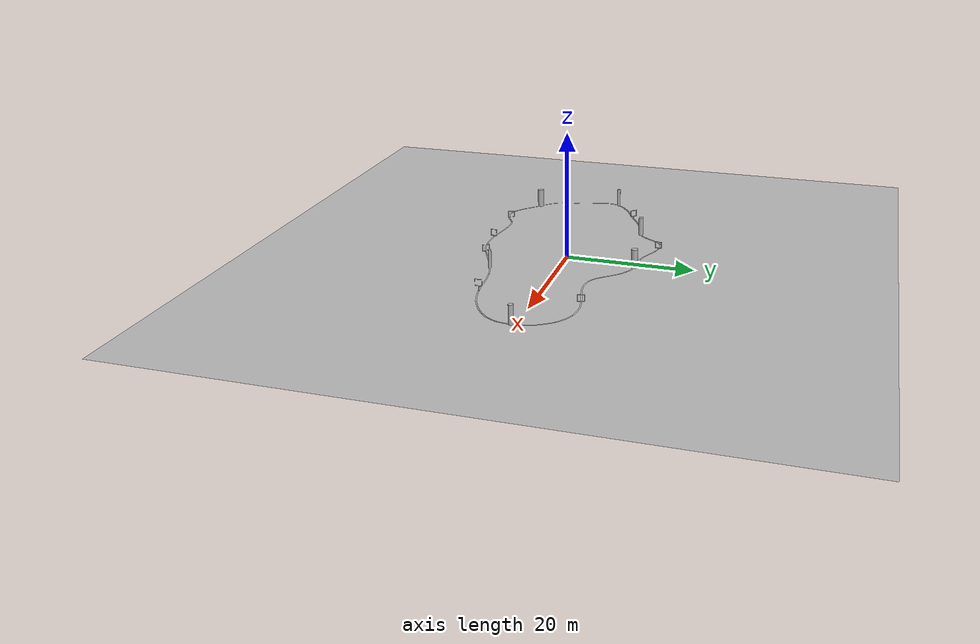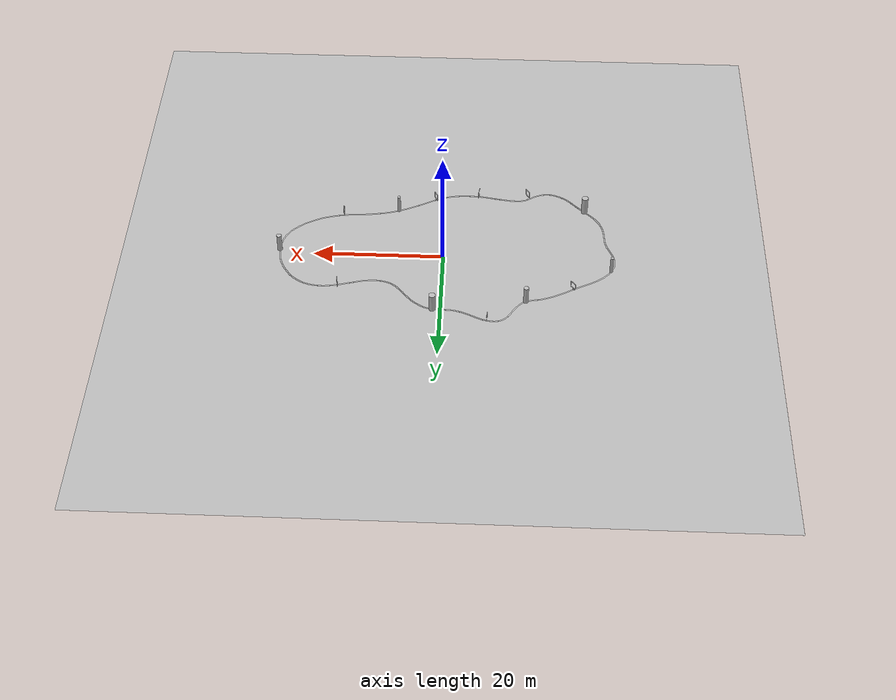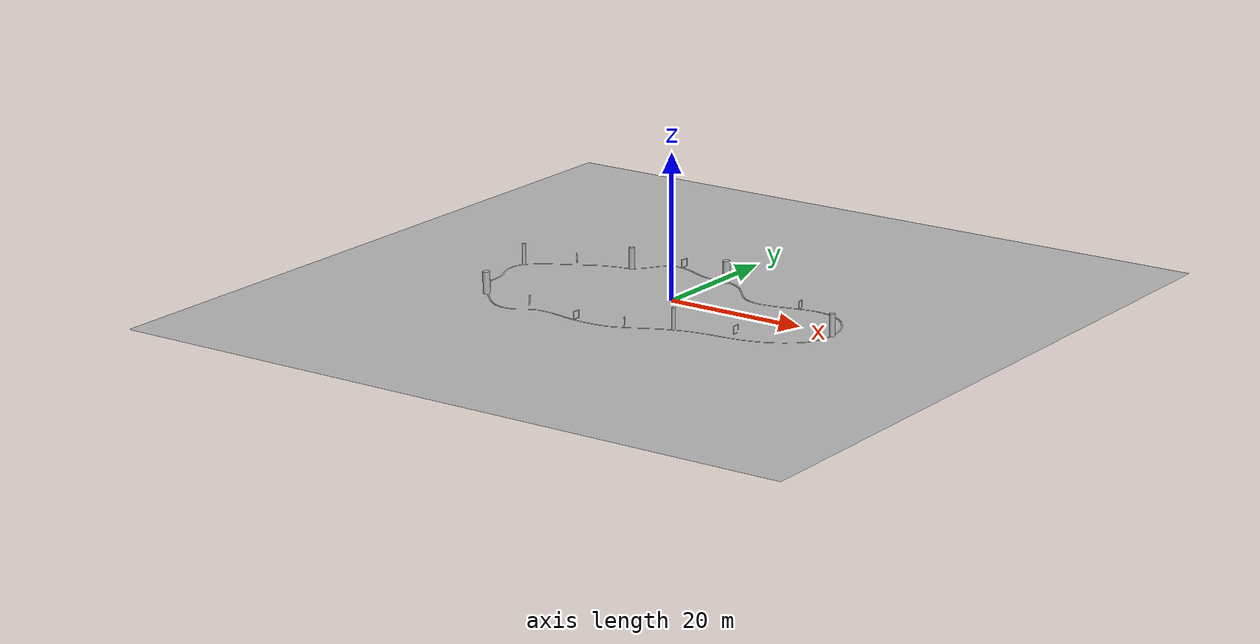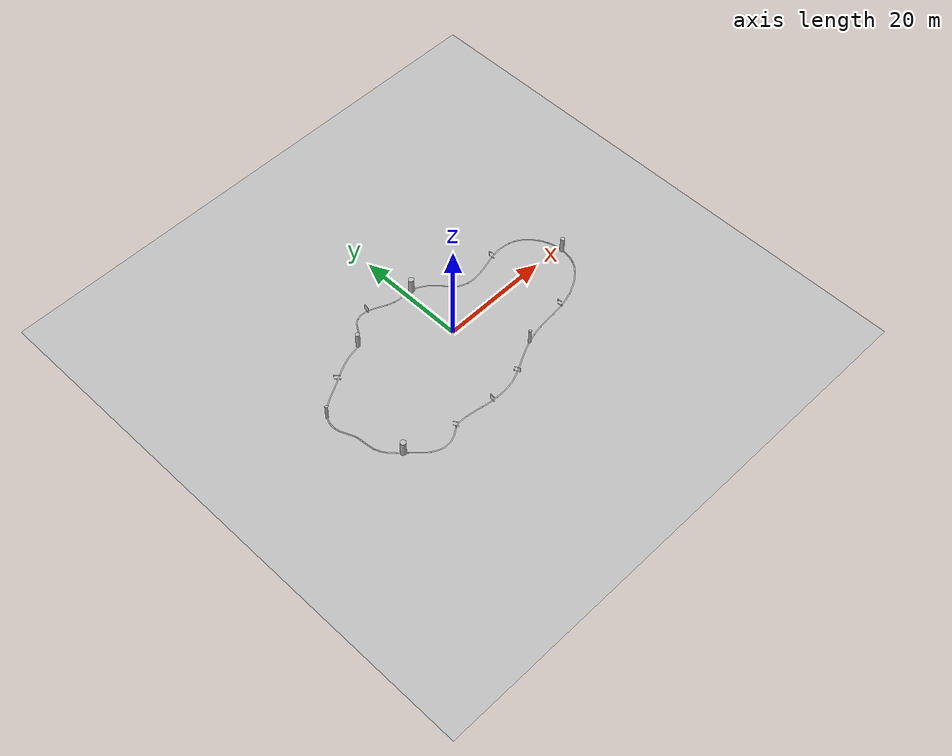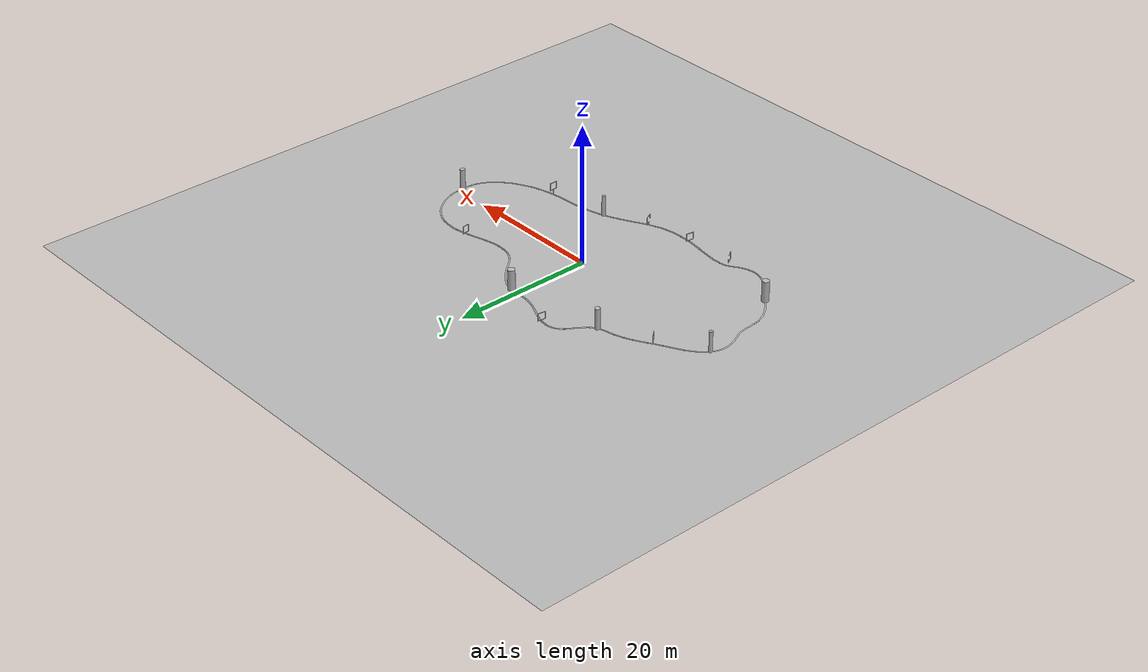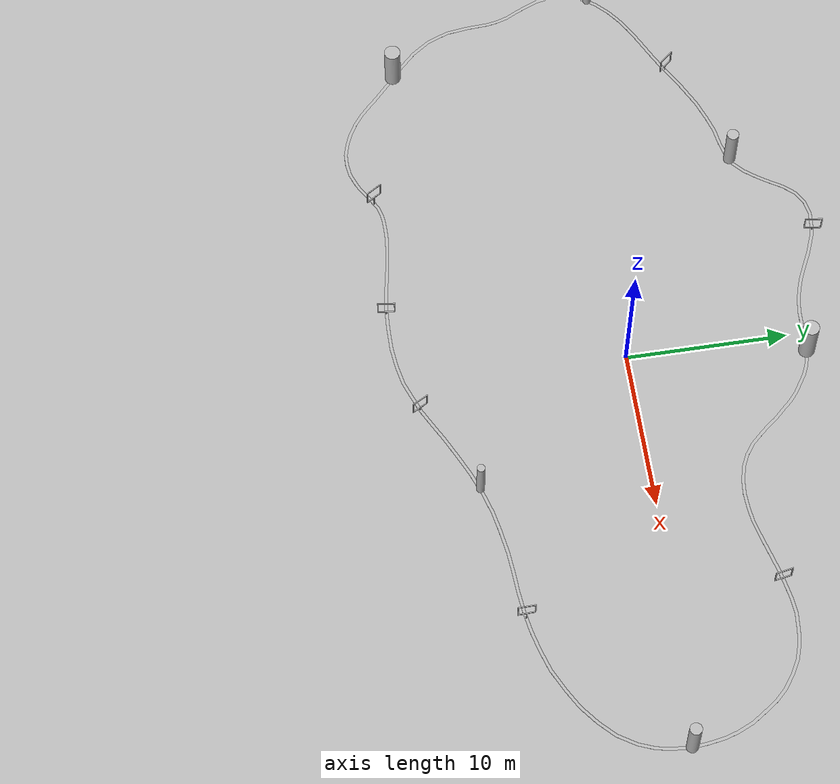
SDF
<sdf version="1.5">
 <world name="default">
  <include><uri>model://sun</uri></include>
  <include><uri>model://ground_my</uri></include>
  <include><uri>model://road_3</uri><static>true</static></include>
  <include>
   <name>1cyl</name>
   <uri>model://cylinder_1</uri>
   <static>true</static>
   <pose>-22.0855 -11.1869 0 0 0 0</pose>
  </include>
  <include>
   <name>2cyl</name>
   <uri>model://cylinder_1</uri>
   <static>true</static>
   <pose>1.1979 10.9989 0 0 0 0</pose>
  </include>
  <include>
   <name>3cyl</name>
   <uri>model://cylinder_0.5</uri>
   <static>true</static>
   <pose>-25.9467 2.106 0 0 0 0</pose>
  </include>
  <include>
   <name>4cyl</name>
   <uri>model://cylinder_0.5</uri>
   <static>true</static>
   <pose>7.389 -10.2559 0 0 0 0</pose>
  </include>
  <include>
   <name>5cyl</name>
   <uri>model://cylinder_0.75</uri>
   <static>true</static>
   <pose>25.419 -0.7747 0 0 0 0</pose>
  </include>
  <include>
   <name>6cyl</name>
   <uri>model://cylinder_0.75</uri>
   <static>true</static>
   <pose>-12.8777 8.9535 0 0 0 0</pose>
  </include>
  <include>
   <name>1frame</name>
   <uri>model://frame_1.2</uri>
   <static>true</static>
   <pose>1.5733 -13.0252 0 0 0 0.488208</pose>
  </include>
  <include>
   <name>2frame</name>
   <uri>model://frame_1.2</uri>
   <static>true</static>
   <pose>-7.0689 13.0742 0 0 0 3.019393</pose>
  </include>
  <include>
   <name>3frame</name>
   <uri>model://frame_1.2</uri>
   <static>true</static>
   <pose>-5.252354 -14.088921 0 0 0 -0.122759</pose>
  </include>
  <include>
   <name>4frame</name>
   <uri>model://frame_2</uri>
   <static>true</static>
   <pose>-13.0712 -13.7066 0 0 0 0.549127</pose>
  </include>
  <include>
   <name>6frame</name>
   <uri>model://frame_2</uri>
   <static>true</static>
   <pose>16.0574 -8.9155 0 0 0 0.030093</pose>
  </include>
  <include>
   <name>8frame</name>
   <uri>model://frame_1.5</uri>
   <static>true</static>
   <pose>-20.0188 6.1494 0 0 0 -2.4173</pose>
  </include>
  <include>
   <name>10frame</name>
   <uri>model://frame_1</uri>
   <static>true</static>
   <pose>15.8791 6.5193 0 0 0 -2.963250</pose>
  </include>
  <include><uri>model://platform</uri><static>true</static><pose>22.9745 -5.9737 0 0 0 3.054361</pose></include>
 </world>
</sdf>

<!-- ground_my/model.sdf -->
<sdf version="1.5">
    <model name="ground">
        <static>true</static>
        <link name="link">
            <collision name="collision">
                <geometry>
                    <mesh>
                        <scale>1 1 1</scale>
                        <uri>model://ground_my/meshes/ground.dae</uri>
                    </mesh>
                    <surface>
                    <friction>
                        <ode>
                            <mu>1.2</mu>
                            <mu2>1.2</mu2>
                        </ode>
                    </friction>
                    </surface>
                </geometry>
            </collision>
            <visual name="visual">
              <geometry>
                <mesh>
                    <scale>1 1 1</scale>
                    <uri>model://ground_my/meshes/ground.dae</uri>
                </mesh>
              </geometry>
             </visual>
        </link>
    </model>
</sdf>

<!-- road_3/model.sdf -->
<sdf version="1.5">
    <model name="road">
        <static>true</static>
        <link name="link">
            <collision name="collision">
                <pose>0 0 0 0 0 0</pose>
                <geometry>
                    <mesh>
                        <uri>model://road_3/meshes/road_3.dae</uri>
                    </mesh>
                </geometry>
            </collision>
            <visual name="visual">

              <pose>0 0 0 0 0 0</pose>
              <geometry>
              <mesh>
                 <uri>model://road_3/meshes/road_3.dae</uri>
              </mesh>
              </geometry>

              <material>
                  <script>
                      <uri>model://road_3/materials/scripts</uri>
                      <uri>model://road_3/materials/textures</uri>
                      <name>roadMat/Diffuse</name>
                  </script>
              </material>
             </visual>

        </link>
    </model>
</sdf>

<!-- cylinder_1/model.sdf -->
<sdf version="1.5">
    <model name="cylinder_1">
        <static>true</static>
        <link name="link">
            <collision name="collision1">
                <pose>0 0 0 0 0 0</pose>
                <geometry>
                    <mesh>
                        <uri>model://cylinder_1/meshes/cylinder_1.stl</uri>
                    </mesh>
                </geometry>
            </collision>
            <visual name="visual1">

              <pose>0 0 0 0 0 0</pose>
              <geometry>
              <mesh>
                 <uri>model://cylinder_1/meshes/cylinder_1.dae</uri>
              </mesh>
              </geometry>

              <material>
                  <script>
                      <uri>model://cylinder_1/materials/scripts</uri>
                      <uri>model://cylinder_1/materials/textures</uri>
                      <name>cylinderMat/Diffuse</name>
                  </script>
              </material>
             </visual>

        </link>
    </model>
</sdf>

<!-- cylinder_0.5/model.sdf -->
<sdf version="1.5">
    <model name="cylinder_05">
        <static>true</static>
        <link name="link">
            <collision name="collision1">
                <pose>0 0 0 0 0 0</pose>
                <geometry>
                    <mesh>
                        <uri>model://cylinder_0.5/meshes/cylinder_0_5.stl</uri>
                    </mesh>
                </geometry>
            </collision>
            <visual name="visual1">

              <pose>0 0 0 0 0 0</pose>
              <geometry>
              <mesh>
                 <uri>model://cylinder_0.5/meshes/cylinder_0_5.dae</uri>
              </mesh>
              </geometry>

              <material>
                  <script>
                      <uri>model://cylinder_0.5/materials/scripts</uri>
                      <uri>model://cylinder_0.5/materials/textures</uri>
                      <name>cylinderMat/Diffuse</name>
                  </script>
              </material>
             </visual>

        </link>
    </model>
</sdf>

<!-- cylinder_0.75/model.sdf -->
<sdf version="1.5">
    <model name="cylinder_075">
        <static>true</static>
        <link name="link">
            <collision name="collision1">
                <pose>0 0 0 0 0 0</pose>
                <geometry>
                    <mesh>
                        <uri>model://cylinder_0.75/meshes/cylinder_0_75.stl</uri>
                    </mesh>
                </geometry>
            </collision>
            <visual name="visual1">

              <pose>0 0 0 0 0 0</pose>
              <geometry>
              <mesh>
                 <uri>model://cylinder_0.75/meshes/cylinder_0_75.dae</uri>
              </mesh>
              </geometry>

              <material>
                  <script>
                      <uri>model://cylinder_0.75/materials/scripts</uri>
                      <uri>model://cylinder_0.75/materials/textures</uri>
                      <name>cylinderMat/Diffuse</name>
                  </script>
              </material>
             </visual>

        </link>
    </model>
</sdf>

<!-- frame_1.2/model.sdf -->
<sdf version="1.5">
    <model name="frame_1_2">
        <static>true</static>
        <link name="link">
            <collision name="collision1">
                <pose>0 0 0 0 0 0</pose>
                <geometry>
                    <mesh>
                        <uri>model://frame_1.2/meshes/frame_1_2.stl</uri>
                    </mesh>
                </geometry>
            </collision>
            <visual name="visual1">

              <pose>0 0 0 0 0 0</pose>
              <geometry>
              <mesh>
                 <uri>model://frame_1.2/meshes/frame_1_2.dae</uri>
              </mesh>
              </geometry>

              <material>
                  <script>
                      <uri>model://frame_1.2/materials/scripts</uri>
                      <uri>model://frame_1.2/materials/textures</uri>
                      <name>frameMat/Diffuse</name>
                  </script>
              </material>
             </visual>

        </link>
    </model>
</sdf>

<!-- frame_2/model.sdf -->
<sdf version="1.5">
    <model name="frame_2">
        <static>true</static>
        <link name="link">
            <collision name="collision1">
                <pose>0 0 0 0 0 0</pose>
                <geometry>
                    <mesh>
                        <uri>model://frame_2/meshes/frame_2.stl</uri>
                    </mesh>
                </geometry>
            </collision>
            <visual name="visual1">

              <pose>0 0 0 0 0 0</pose>
              <geometry>
              <mesh>
                 <uri>model://frame_2/meshes/frame_2.dae</uri>
              </mesh>
              </geometry>

              <material>
                  <script>
                      <uri>model://frame_2/materials/scripts</uri>
                      <uri>model://frame_2/materials/textures</uri>
                      <name>frameMat/Diffuse</name>
                  </script>
              </material>
             </visual>

        </link>
    </model>
</sdf>

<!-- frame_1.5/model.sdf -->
<sdf version="1.5">
    <model name="frame_1_5">
        <static>true</static>
        <link name="link">
            <collision name="collision1">
                <pose>0 0 0 0 0 0</pose>
                <geometry>
                    <mesh>
                        <uri>model://frame_1.5/meshes/frame_1_5.stl</uri>
                    </mesh>
                </geometry>
            </collision>
            <visual name="visual1">

              <pose>0 0 0 0 0 0</pose>
              <geometry>
              <mesh>
                 <uri>model://frame_1.5/meshes/frame_1_5.dae</uri>
              </mesh>
              </geometry>

              <material>
                  <script>
                      <uri>model://frame_1.5/materials/scripts</uri>
                      <uri>model://frame_1.5/materials/textures</uri>
                      <name>frameMat/Diffuse</name>
                  </script>
              </material>
             </visual>

        </link>
    </model>
</sdf>

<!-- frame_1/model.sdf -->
<sdf version="1.5">
    <model name="frame_1">
        <static>true</static>
        <link name="link">
            <collision name="collision1">
                <pose>0 0 0 0 0 0</pose>
                <geometry>
                    <mesh>
                        <uri>model://frame_1/meshes/frame_1.stl</uri>
                    </mesh>
                </geometry>
            </collision>
            <visual name="visual1">

              <pose>0 0 0 0 0 0</pose>
              <geometry>
              <mesh>
                 <uri>model://frame_1/meshes/frame_1.dae</uri>
              </mesh>
              </geometry>

              <material>
                  <script>
                      <uri>model://frame_1/materials/scripts</uri>
                      <uri>model://frame_1/materials/textures</uri>
                      <name>frameMat/Diffuse</name>
                  </script>
              </material>
             </visual>

        </link>
    </model>
</sdf>

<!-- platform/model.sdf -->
<sdf version="1.6">
  <model name="platform">
    <static>false</static>
    <link name="dummy_upper"/>

    <joint name="world_joint" type="fixed">
      <parent>world</parent>
      <child>dummy_upper</child>
    </joint>
  </model>
</sdf>
